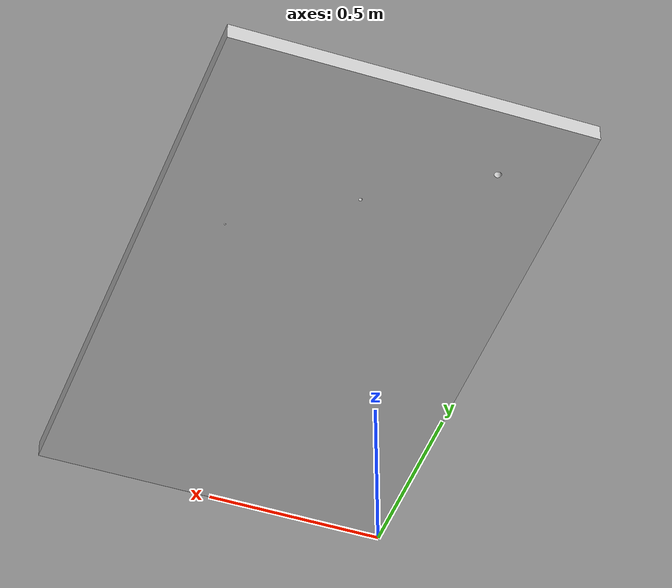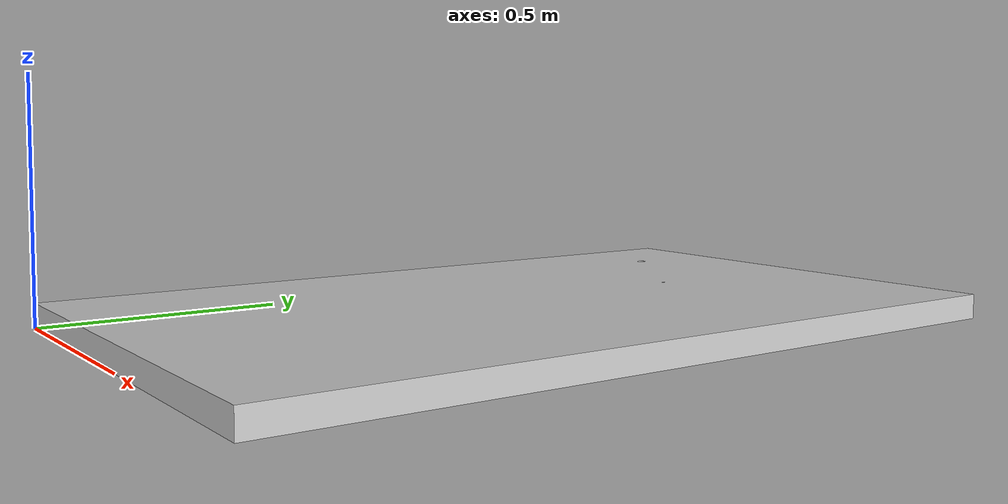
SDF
<?xml version="1.0" ?>
<sdf version="1.6">
  <model name="wall_hole">
    <static>true</static>
    <link name="wall_link">
      <visual name="wall_visual">
        <geometry>
          <mesh>
            <uri>file:///home/nakata/ros/jsk_aerial_robot_ws/src/jsk_aerial_robot/aerial_robot_simulation/gazebo_model/model/wall_hole/mesh/wall_hole.STL</uri>
            <scale>1 1 1</scale>
          </mesh>
        </geometry>
        <material>
          <ambient>0.8 0.8 0.8 1</ambient>
          <diffuse>0.8 0.8 0.8 1</diffuse>
        </material>
      </visual>

      <collision name="wall_collision">
        <geometry>
          <mesh>
            <uri>file:///home/nakata/ros/jsk_aerial_robot_ws/src/jsk_aerial_robot/aerial_robot_simulation/gazebo_model/model/wall_hole/mesh/wall_hole.STL</uri>
            <scale>1 1 1</scale>
          </mesh>
        </geometry>
      </collision>
    </link>
  </model>
</sdf>
